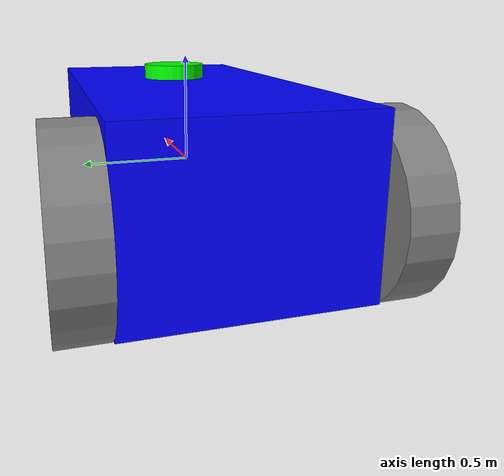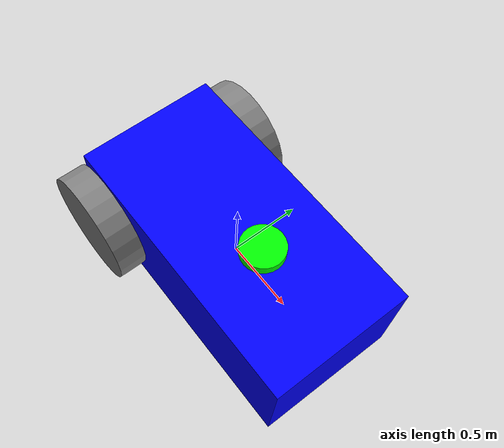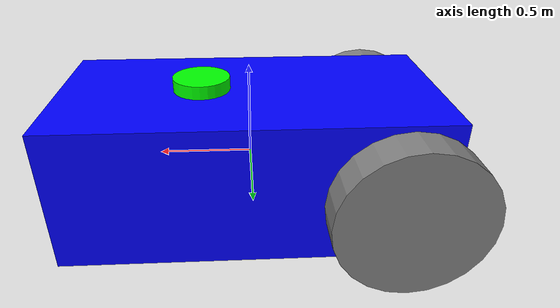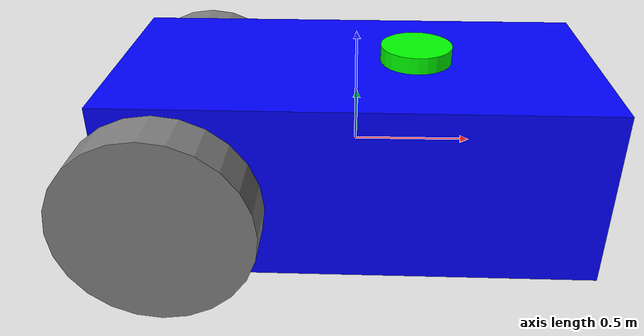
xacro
<?xml version="1.0"?>
<robot name="sam_bot" xmlns:xacro="http://ros.org/wiki/xacro">

<!-- Define robot constants -->
<xacro:property name="base_width" value="1"/>
<xacro:property name="base_length" value="2"/>
<xacro:property name="base_height" value="0.75"/>

<xacro:property name="wheel_radius" value="0.4"/>
<xacro:property name="wheel_width" value="0.2"/>
<xacro:property name="wheel_ygap" value="0.1"/>
<xacro:property name="wheel_zoff" value="0.05"/>
<xacro:property name="wheel_xoff" value="0.75"/>

<xacro:property name="caster_xoff" value="0.654"/>

<xacro:property name="lidar_xoff" value="0.25"/>
<xacro:property name="lidar_width" value="0.07"/>
<xacro:property name="lidar_radius" value="0.15"/>

<gazebo>
  <pose>0 0 ${(wheel_radius + wheel_zoff)} 0 0 0</pose>
</gazebo>

<!-- Robot Base -->

<link name="base_link">
    <visual>
      <geometry>
        <box size="${base_length} ${base_width} ${base_height}"/>
      </geometry>
      <material name="Cyan">
        <color rgba="0 0 1.0 1.0"/>
      </material>
    </visual>

    <inertial>
      <mass value="1.14395"></mass>
      <inertia ixx="0.095328999999999997" ixy="0" ixz="0" iyz="0" iyy="0.38131700000000002" izz="0.47664600000000001">
      </inertia>
    </inertial>

    <collision>
      <geometry>
        <box size="${base_length} ${base_width} ${base_height}"/>
      </geometry>
    </collision>
  </link>

  <!-- Robot Footprint -->
  <link name="base_footprint"/>

  <joint name="base_joint" type="fixed">
    <parent link="base_link"/>
    <child link="base_footprint"/>
    <origin xyz="0.0 0.0 ${-(wheel_radius+wheel_zoff)}" rpy="0 0 0"/>
  </joint>

  <!-- Wheels -->
  <xacro:macro name="wheel" params="prefix x_reflect y_reflect">
    <link name="${prefix}_link">
      <visual>
        <origin xyz="0 0 0" rpy="${pi/2} 0 0"/>
        <geometry>
            <cylinder radius="${wheel_radius}" length="${wheel_width}"/>
        </geometry>
        <material name="Gray">
          <color rgba="0.5 0.5 0.5 1.0"/>
        </material>
      </visual>

      <inertial>
        <mass value="1"></mass>
        <inertia ixx="0.043333000000000003" ixy="0" ixz="0" iyy="0.043333000000000003" iyz="0" izz="0.080000000000000002">
        </inertia>
      </inertial>

      <collision name='collision'>
        <origin xyz="0 0 0" rpy="${pi/2} 0 0"/>
        <geometry>
            <cylinder radius="${wheel_radius}" length="${wheel_width}"/>
        </geometry>
      </collision>
    </link>

    <joint name="${prefix}_joint" type="continuous">
      <parent link="base_link"/>
      <child link="${prefix}_link"/>
      <origin xyz="${x_reflect*wheel_xoff} ${y_reflect*(base_width/2+wheel_ygap)} ${-wheel_zoff}" rpy="0 0 0"/>
      <axis xyz="0 1 0"/>
    </joint>

  </xacro:macro>

  <xacro:wheel prefix="drivewhl_l" x_reflect="-1" y_reflect="1" />
  <xacro:wheel prefix="drivewhl_r" x_reflect="-1" y_reflect="-1" />

  <!-- Caster Wheel -->
  <link name="front_caster">
    <visual>
      <geometry>
        <sphere radius="${(wheel_radius+wheel_zoff-(base_height/2))}"/>
      </geometry>
      <material name="Red">
        <color rgba="1.0 0 0 1.0"/>
      </material>
    </visual>
    <inertial>
      <mass value="1"></mass>
      <inertia ixx="0.016" iyy="0.016" izz="0.016" ixy="0" ixz="0" iyz="0">
      </inertia>
    </inertial>
    <collision>
      <geometry>
        <sphere radius="${(wheel_radius+wheel_zoff-(base_height/2))}"/>
      </geometry>
    </collision>
  </link>

  <joint name="caster_joint" type="continuous">
    <parent link="base_link"/>
    <child link="front_caster"/>
    <origin xyz="${caster_xoff} 0.0 ${-(base_height/2)}" rpy="0 0 0"/>
  </joint>

  <link name='lidar_link'>
    <inertial>
    <mass value="0.1"></mass>
    <inertia ixx="7.58" iyy="7.58" izz="0.000125" ixz="0" ixy="0" iyz="0">
    </inertia>
    </inertial>
    <visual>
      <geometry>
          <cylinder radius="${lidar_radius}" length="${lidar_width}">
          </cylinder>
      </geometry>
      <material name="Green">
        <color rgba="0 1 0 1"></color>
      </material>
    </visual>
    <collision>
      <geometry>
          <cylinder radius="${lidar_radius}" length="${lidar_width}">
          </cylinder>
      </geometry>
    </collision>
  </link>

  <joint name="lidar_joint" type="fixed">
    <parent link="base_link"/>
      <child link="lidar_link"/>
    <origin xyz="${lidar_xoff} 0 ${(base_height/2 + lidar_width/2)}" rpy="0 0 0"/>
  </joint>
  <gazebo reference="lidar_link">
    <sensor name="lidar" type="gpu_lidar">
      <topic>base_lidar</topic>
      <always_on>true</always_on>
      <visualize>true</visualize>
      <update_rate>30</update_rate>
      <frame_id>lidar_link</frame_id>
      <lidar>
        <scan>
          <horizontal>
            <samples>640</samples>
            <resolution>1</resolution>
            <min_angle>-2.6179963000000002</min_angle>
            <max_angle>2.6179963000000002</max_angle>
          </horizontal>
          <vertical>
            <samples>16</samples>
            <min_angle>-0.261799</min_angle>
            <max_angle>0.261799</max_angle>
            <resolution>1</resolution>
          </vertical>
        </scan>
        <range>
          <min>0.120000</min>
          <max>3.5</max>
          <resolution>0.015000</resolution>
        </range>
        <noise>
          <type>gaussian</type>
          <mean>0.0</mean>
          <stddev>0.01</stddev>
        </noise>
      </lidar>
    </sensor>
  </gazebo>

  <gazebo>
    <plugin name='gz::sim::systems::DiffDrive' filename='gz-sim-diff-drive-system'>
      <left_joint>drivewhl_l_joint</left_joint>
      <right_joint>drivewhl_r_joint</right_joint>
      <wheel_separation>1.2</wheel_separation>
      <wheel_radius>0.4</wheel_radius>
      <tf_topic>/diff_drive/tf</tf_topic>
      <topic>cmd_vel</topic>
      <odom_publish_frequency>30</odom_publish_frequency>
      <frame_id>odom</frame_id>
      <child_frame_id>base_link</child_frame_id>
    </plugin>
  </gazebo>

  <gazebo reference="base_link">
    <sensor name="imu_sensor" type="imu">
      <always_on>true</always_on>
      <topic>base_imu</topic>
      <visualize>true</visualize>
      <update_rate>30</update_rate>
      <imu>
        <angular_velocity>
          <x>
            <noise type="gaussian">
              <mean>0.0</mean>
              <stddev>2e-4</stddev>
              <bias_mean>0.0000075</bias_mean>
              <bias_stddev>0.0000008</bias_stddev>
            </noise>
          </x>
          <y>
            <noise type="gaussian">
              <mean>0.0</mean>
              <stddev>2e-4</stddev>
              <bias_mean>0.0000075</bias_mean>
              <bias_stddev>0.0000008</bias_stddev>
            </noise>
          </y>
          <z>
            <noise type="gaussian">
              <mean>0.0</mean>
              <stddev>2e-4</stddev>
              <bias_mean>0.0000075</bias_mean>
              <bias_stddev>0.0000008</bias_stddev>
            </noise>
          </z>
        </angular_velocity>
        <linear_acceleration>
          <x>
            <noise type="gaussian">
              <mean>0.0</mean>
              <stddev>1.7e-2</stddev>
              <bias_mean>0.1</bias_mean>
              <bias_stddev>0.001</bias_stddev>
            </noise>
          </x>
          <y>
            <noise type="gaussian">
              <mean>0.0</mean>
              <stddev>1.7e-2</stddev>
              <bias_mean>0.1</bias_mean>
              <bias_stddev>0.001</bias_stddev>
            </noise>
          </y>
          <z>
            <noise type="gaussian">
              <mean>0.0</mean>
              <stddev>1.7e-2</stddev>
              <bias_mean>0.1</bias_mean>
              <bias_stddev>0.001</bias_stddev>
            </noise>
          </z>
        </linear_acceleration>
      </imu>
    </sensor>
  </gazebo>
</robot>
